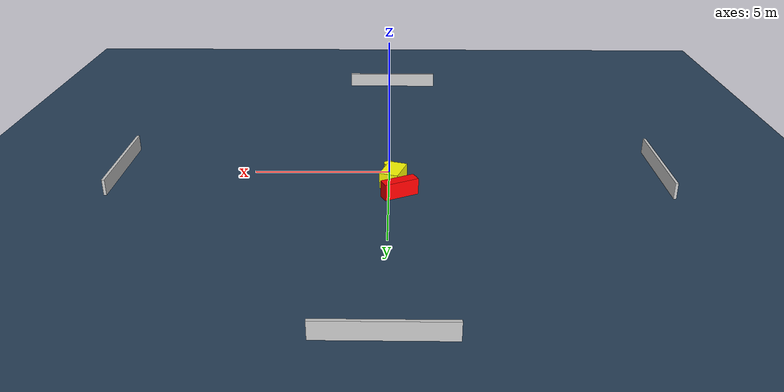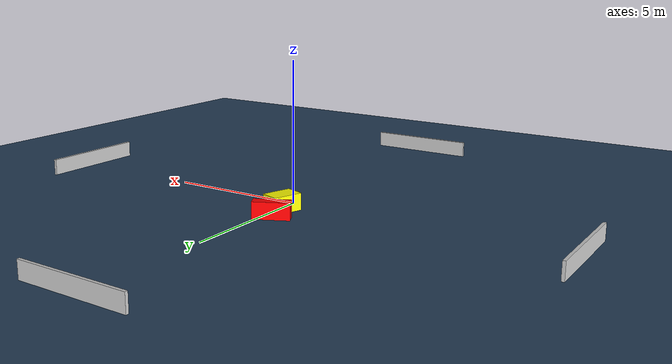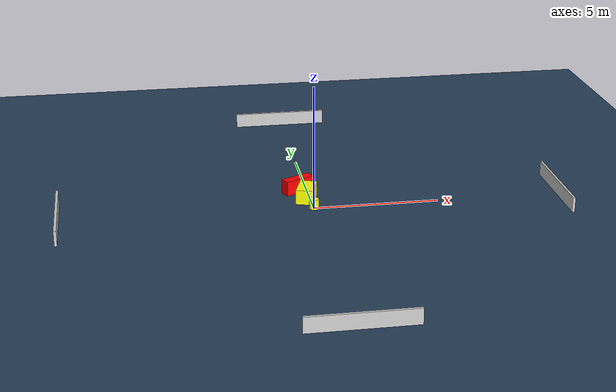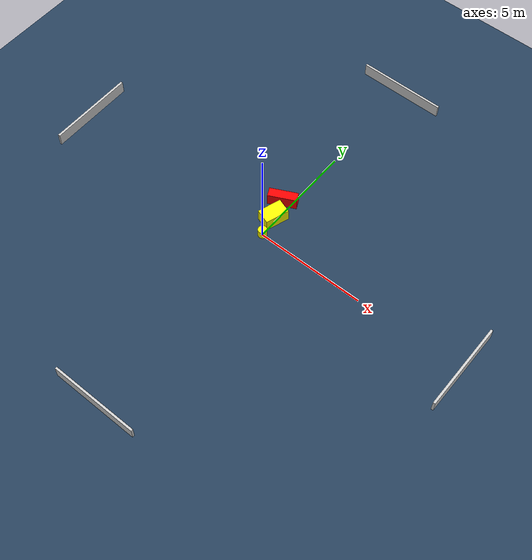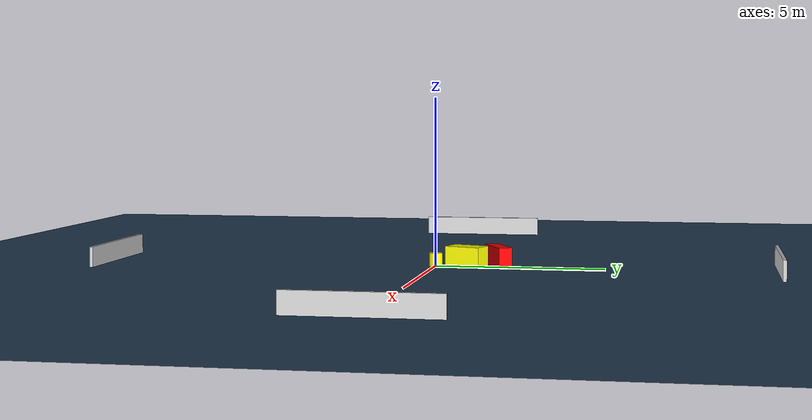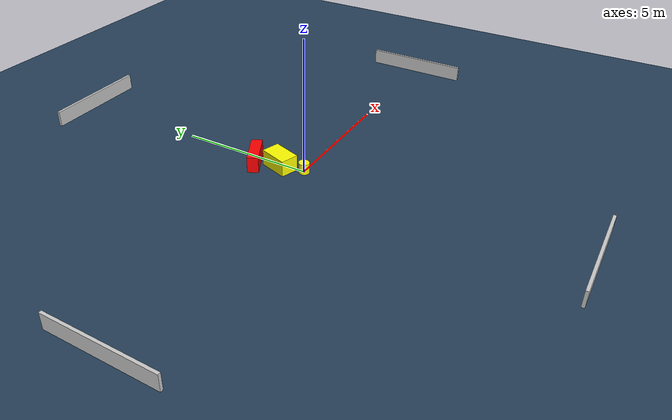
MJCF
<?xml version="1.0" ?>
<mujoco model="generated_environment">
  <option timestep="0.01" integrator="RK4" cone="elliptic"/>
  <default>
    <geom density="1"/>
  </default>
  <asset>
    <texture builtin="gradient" height="3072" name="skybox" rgb1="0.3 0.5 0.7" rgb2="0 0 0" type="skybox" width="512"/>
    <texture builtin="checker" height="300" name="groundplane" rgb1="0.2 0.3 0.4" rgb2="0.1 0.2 0.3" type="2d" width="300"/>
    <material name="groundplane" reflectance="0.2" texrepeat="5 5" texture="groundplane"/>
  </asset>
  <worldbody>
    <light dir="0 0 -1" directional="true" pos="0 0 1.5"/>
    <geom condim="3" friction="0.5 0.005 0.001" material="groundplane" name="floor" pos="0 0 0" size="0 0 0.05" type="plane"/>
    <body name="walls">
      <geom name="wall_1" condim="4" pos="-10.0 0.0 0.3" rgba="0.800000011920929 0.800000011920929 0.800000011920929 1.0" size="0.05 2.0 0.3" type="box"/>
      <geom name="wall_2" condim="4" pos="10.0 0.0 0.3" rgba="0.800000011920929 0.800000011920929 0.800000011920929 1.0" size="0.05 2.0 0.3" type="box"/>
      <geom name="wall_3" condim="4" pos="0.0 -10.0 0.3" rgba="0.800000011920929 0.800000011920929 0.800000011920929 1.0" size="2.0 0.05 0.3" type="box"/>
      <geom name="wall_4" condim="4" pos="0.0 10.0 0.3" rgba="0.800000011920929 0.800000011920929 0.800000011920929 1.0" size="2.0 0.05 0.3" type="box"/>
    </body>
    <body name="robot">
      <joint name="joint_x" type="slide" pos="0 0 0" axis="1 0 0"/>
      <joint name="joint_y" type="slide" pos="0 0 0" axis="0 1 0"/>
      <geom name="robot" type="cylinder" pos="0.0 0.0 0.2" size="0.2 0.2 0.0" mass="5.0" friction="1.0 0.005 0.0001" condim="4" rgba="1.0 1.0 0.0 1.0"/>
    </body>
    <body name="obstacle_1_movable">
      <geom name="obstacle_1_movable" condim="4" pos="-0.15403169383868973 0.9065063816857135 0.3" euler="0 0 251.48891639499607" friction="0.0 0.005 0.001" rgba="1.0 1.0 0.0 1.0" size="0.5446125520657392 0.34181401842628 0.3" type="box" mass="0.1"/>
      <joint type="free"/>
    </body>
    <body name="obstacle_2_static">
      <geom name="obstacle_2_static" condim="4" pos="-0.3769252281364199 1.8293371367088356 0.3" euler="0 0 296.387264924995" friction="0.0 0.005 0.001" rgba="1.0 0.0 0.0 1.0" size="0.20571757549107028 0.6415237938320867 0.3" type="box"/>
    </body>
  </worldbody>
  <actuator>
    <motor name="actuator_x" joint="joint_x" gear="1" ctrlrange="-1 1"/>
    <motor name="actuator_y" joint="joint_y" gear="1" ctrlrange="-1 1"/>
  </actuator>
</mujoco>
